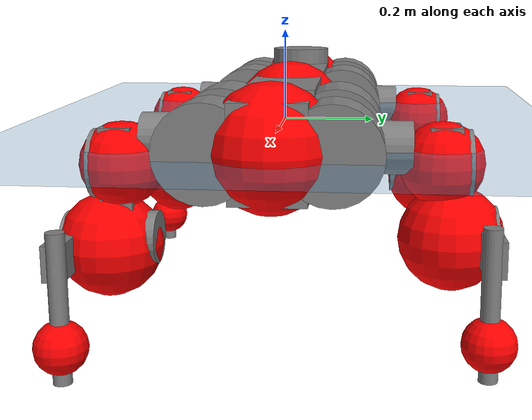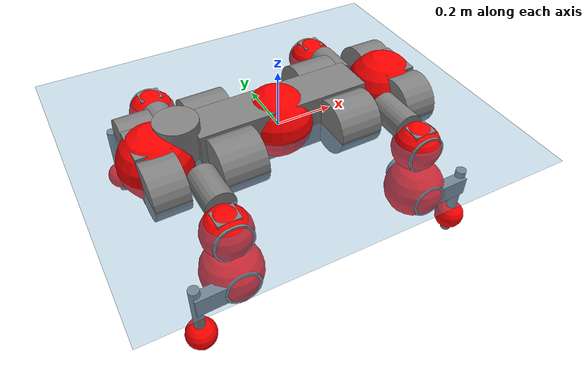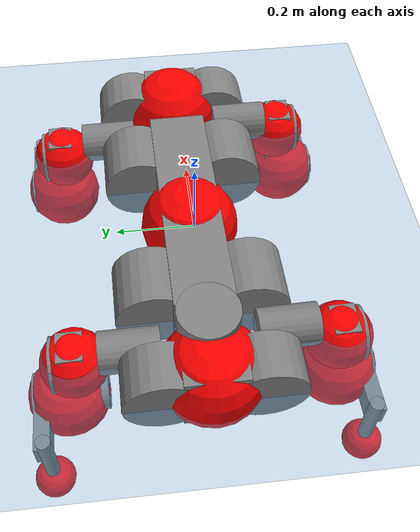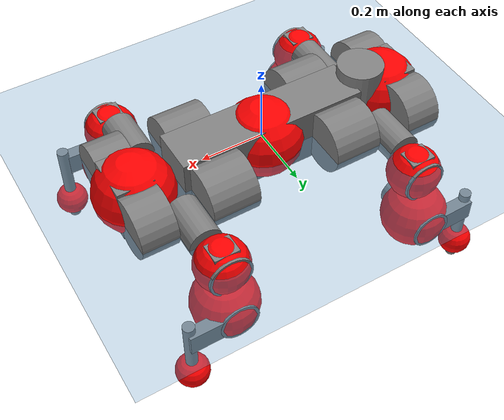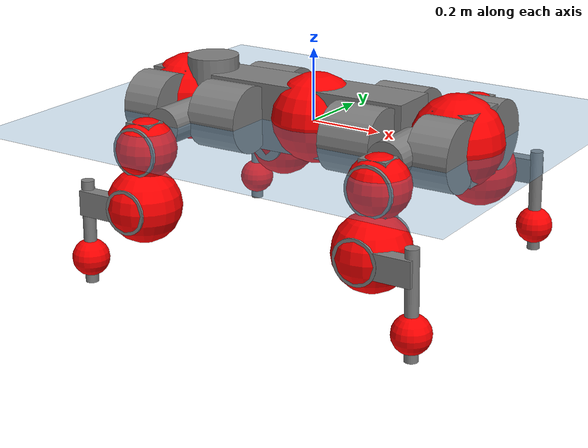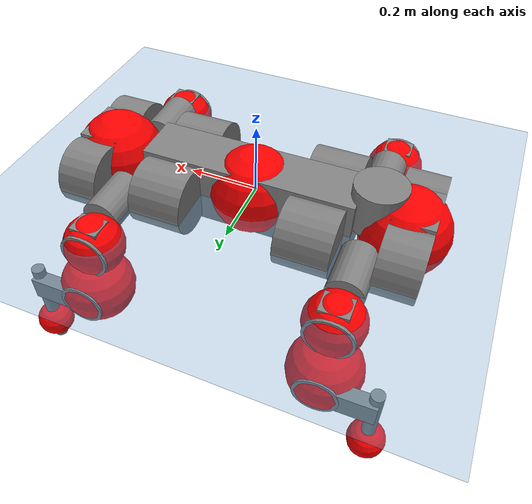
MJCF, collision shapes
<mujoco model="anymal_c">
  <compiler angle="radian" assetdir="assets" balanceinertia="true" inertiafromgeom="false"/>

  <option timestep="0.005" density="1.2" viscosity="2e-05"/>

  <size nkey="1"/>

  <visual>
    <quality shadowsize="8192"/>
    <map shadowclip="0.5"/>
  </visual>

  <default>
    <default class="/">
      <material specular="0" shininess="0.25"/>
      <geom contype="0" conaffinity="0" group="1" solref="-1000 -80"/>
      <site size="0.01 0.005 0.005" group="5"/>
      <general forcelimited="true" forcerange="-80 80" biastype="affine" gainprm="80" biasprm="0 -80 -2"/>
      <default class="anymal_c">
        <joint armature="0.01" damping="0.01" frictionloss="0.1"/>
        <default class="visual">
          <geom type="mesh" group="2"/>
          <default class="visual_zflip"/>
        </default>
        <default class="collision">
          <geom type="cylinder" group="3"/>
          <default class="foot">
            <geom size="0.03 0 0" type="sphere" condim="6" priority="1" friction="0.8 0.02 0.01" solimp="0.015 1 0.03"/>
          </default>
        </default>
      </default>
      <default class="reward_collision_sphere">
        <geom group="5" rgba="1 0 0 1"/>
      </default>
    </default>
  </default>

  <asset>
    <texture type="skybox" colorspace="auto" name="//unnamed_texture_0" builtin="gradient" rgb1="0.95 0.95 0.95" rgb2="0.95 0.95 0.95" width="100" height="600"/>
    <texture type="2d" colorspace="auto" name="texplane" builtin="checker" rgb1="0.345 0.575 0.748" rgb2="0.345 0.575 0.748" markrgb="1 1 1" width="512" height="512"/>
    <texture type="2d" colorspace="linear" name="base" file="base.png"/>
    <texture type="2d" colorspace="linear" name="top_shell" file="top_shell.png"/>
    <texture type="2d" colorspace="linear" name="bottom_shell" file="bottom_shell.png"/>
    <texture type="2d" colorspace="linear" name="remote" file="remote.png"/>
    <texture type="2d" colorspace="linear" name="hatch" file="hatch.png"/>
    <texture type="2d" colorspace="linear" name="handle" file="handle.png"/>
    <texture type="2d" colorspace="linear" name="face" file="face.png"/>
    <texture type="2d" colorspace="linear" name="battery" file="battery.png"/>
    <texture type="2d" colorspace="linear" name="lidar_cage" file="lidar_cage.png"/>
    <texture type="2d" colorspace="linear" name="depth_camera" file="depth_camera.png"/>
    <texture type="2d" colorspace="linear" name="wide_angle_camera" file="wide_angle_camera.png"/>
    <texture type="2d" colorspace="linear" name="lidar" file="lidar.png"/>
    <texture type="2d" colorspace="linear" name="drive" file="drive.png"/>
    <texture type="2d" colorspace="linear" name="hip_l" file="hip_l.png"/>
    <texture type="2d" colorspace="linear" name="shank_l" file="shank_l.png"/>
    <texture type="2d" colorspace="linear" name="foot" file="foot.png"/>
    <texture type="2d" colorspace="linear" name="thigh" file="thigh.png"/>
    <texture type="2d" colorspace="linear" name="shank_r" file="shank_r.png"/>
    <texture type="2d" colorspace="linear" name="hip_r" file="hip_r.png"/>
    <material name="MatPlane" class="/" texture="texplane" texuniform="true" texrepeat="2 2" specular="0.9" shininess="0.5"/>
    <material name="black_plastic" class="/" rgba="0.007 0.007 0.007 1"/>
    <material name="green" class="/" rgba="0.052 0.178 0.033 1"/>
    <material name="red" class="/" rgba="0.178 0.006 0.005 1"/>
    <material name="yellow" class="/" rgba="0.178 0.119 0.006 1"/>
    <material name="lwl" class="/" rgba="0.8 0.8 0.8 1"/>
    <material name="base" class="/" texture="base"/>
    <material name="top_shell" class="/" texture="top_shell"/>
    <material name="bottom_shell" class="/" texture="bottom_shell"/>
    <material name="hip_l" class="/" texture="hip_l"/>
    <material name="thigh" class="/" texture="thigh"/>
    <material name="shank_l" class="/" texture="shank_l"/>
    <material name="foot" class="/" texture="foot"/>
    <material name="hip_r" class="/" texture="hip_r"/>
    <material name="shank" class="/" texture="shank_r"/>
    <material name="hatch" class="/" texture="hatch"/>
    <material name="remote" class="/" texture="remote"/>
    <material name="handle" class="/" texture="handle"/>
    <material name="face" class="/" texture="face"/>
    <material name="depth_camera" class="/" texture="depth_camera"/>
    <material name="wide_angle_camera" class="/" texture="wide_angle_camera"/>
    <material name="battery" class="/" texture="battery"/>
    <material name="lidar_cage" class="/" texture="lidar_cage"/>
    <material name="lidar" class="/" texture="lidar"/>
    <material name="drive" class="/" texture="drive"/>
    <mesh name="base_0" class="/" file="base_0.obj"/>
    <mesh name="base_1" class="/" file="base_1.obj"/>
    <mesh name="base_2" class="/" file="base_2.obj"/>
    <mesh name="base_3" class="/" file="base_3.obj"/>
    <mesh name="base_4" class="/" file="base_4.obj"/>
    <mesh name="base_5" class="/" file="base_5.obj"/>
    <mesh name="top_shell" class="/" file="top_shell.obj"/>
    <mesh name="bottom_shell" class="/" file="bottom_shell.obj"/>
    <mesh name="remote" class="/" file="remote.obj"/>
    <mesh name="handle" class="/" file="handle.obj"/>
    <mesh name="face" class="/" file="face.obj"/>
    <mesh name="wide_angle_camera" class="/" file="wide_angle_camera.obj"/>
    <mesh name="depth_camera" class="/" file="depth_camera.obj"/>
    <mesh name="battery" class="/" file="battery.obj"/>
    <mesh name="lidar_cage" class="/" file="lidar_cage.obj"/>
    <mesh name="lidar" class="/" file="lidar.obj"/>
    <mesh name="drive" class="/" file="drive.obj"/>
    <mesh name="hip_l" class="/" file="hip_l.obj"/>
    <mesh name="thigh" class="/" file="thigh.obj"/>
    <mesh name="shank_l" class="/" file="shank_l.obj"/>
    <mesh name="foot" class="/" file="foot.obj"/>
    <mesh name="hip_r" class="/" file="hip_r.obj"/>
    <mesh name="hatch" class="/" file="hatch.obj"/>
    <mesh name="shank_r" class="/" file="shank_r.obj"/>
  </asset>

  <worldbody>
    <geom name="floor" class="/" size="100 100 0.125" type="plane" group="0" material="MatPlane"/>
    <light name="toplight_shadow" class="/" pos="0 0 5" dir="0.0990148 0.0990148 -0.990148" type="directional" ambient="0.04 0.04 0.04" diffuse="0.55 0.55 0.55" specular="0.12 0.12 0.12"/>
    <light name="toplight_fill" class="/" pos="0 0 5" dir="0.0990148 0.0990148 -0.990148" type="directional" castshadow="false" ambient="0.04 0.04 0.04" diffuse="0.3 0.3 0.3" specular="0.08 0.08 0.08"/>
    <body name="trunk" childclass="anymal_c" pos="0.0014834 0.0115901 0.0070637" quat="0.999983 -0.000294024 -0.00364819 0.00453269">
      <inertial pos="0.0125631 0.0165485 0.0134878" quat="0.469248 0.539565 0.494709 0.493902" mass="21.2808" diaginertia="0.693356 8.75465 0.00750377"/>
      <joint name="//unnamed_joint_0" type="free" armature="0" damping="0" frictionloss="0"/>
      <geom name="//unnamed_geom_1" class="visual" material="green" mesh="base_0"/>
      <geom name="//unnamed_geom_2" class="visual" material="yellow" mesh="base_1"/>
      <geom name="//unnamed_geom_3" class="visual" material="red" mesh="base_2"/>
      <geom name="//unnamed_geom_4" class="visual" material="black_plastic" mesh="base_3"/>
      <geom name="//unnamed_geom_5" class="visual" material="lwl" mesh="base_4"/>
      <geom name="//unnamed_geom_6" class="visual" material="base" mesh="base_5"/>
      <geom name="trunk_1" class="collision" size="0.299121 0.0722017 0.0928308" type="box"/>
      <geom name="trunk_2" class="collision" size="0.0928308 0.0747804" pos="0.205176 0.11486 0" quat="0.707107 0 0.707107 0"/>
      <geom name="trunk_3" class="collision" size="0.0928308 0.0747804" pos="-0.205176 0.11486 0" quat="0.707107 0 0.707107 0"/>
      <geom name="trunk_4" class="collision" size="0.0928308 0.0747804" pos="0.205176 -0.11486 0" quat="0.707107 0 0.707107 0"/>
      <geom name="trunk_5" class="collision" size="0.0928308 0.0747804" pos="-0.205176 -0.11486 0" quat="0.707107 0 0.707107 0"/>
      <geom name="//unnamed_geom_12" class="visual" material="top_shell" mesh="top_shell"/>
      <geom name="//unnamed_geom_13" class="visual" material="bottom_shell" mesh="bottom_shell"/>
      <geom name="//unnamed_geom_14" class="visual" material="remote" mesh="remote"/>
      <geom name="//unnamed_geom_15" class="visual" material="handle" mesh="handle"/>
      <geom name="//unnamed_geom_16" class="visual" pos="0.391014 0 0" quat="1 0 0 0" material="face" mesh="face"/>
      <geom name="trunk_6" class="collision" size="0.0567299 0.0722017 0.0928308" pos="0.442898 0 0" type="box"/>
      <geom name="//unnamed_geom_18" class="collision" size="0.0928308 0.0567299" pos="0.442898 0.11486 0" quat="0.707107 0 0.707107 0"/>
      <geom name="//unnamed_geom_19" class="collision" size="0.0928308 0.0567299" pos="0.442898 -0.11486 0" quat="0.707107 0 0.707107 0"/>
      <geom name="//unnamed_geom_20" class="visual" pos="0.435475 0 -0.0116044" quat="0.965926 0 0.258819 0" material="depth_camera" mesh="depth_camera"/>
      <geom name="//unnamed_geom_21" class="visual" pos="0.483933 0 0.00763707" material="wide_angle_camera" mesh="wide_angle_camera"/>
      <geom name="//unnamed_geom_22" class="visual_zflip" pos="-0.391014 0 0" quat="0 0 0 1" material="face" mesh="face"/>
      <geom name="trunk_7" class="collision" size="0.0567299 0.0722017 0.0928308" pos="-0.442898 0 0" quat="0 0 0 1" type="box"/>
      <geom name="//unnamed_geom_24" class="collision" size="0.0928308 0.0567299" pos="-0.442898 -0.11486 0" quat="0 -0.707107 0 0.707107"/>
      <geom name="//unnamed_geom_25" class="collision" size="0.0928308 0.0567299" pos="-0.442898 0.11486 0" quat="0 -0.707107 0 0.707107"/>
      <geom name="//unnamed_geom_26" class="visual" pos="-0.435475 0 -0.0116044" quat="0 -0.258819 0 0.965926" material="depth_camera" mesh="depth_camera"/>
      <geom name="//unnamed_geom_27" class="visual_zflip" pos="-0.483933 0 0.00763707" quat="0 0 0 1" material="wide_angle_camera" mesh="wide_angle_camera"/>
      <geom name="//unnamed_geom_28" class="visual" material="battery" mesh="battery"/>
      <geom name="//unnamed_geom_29" class="visual" pos="0 0.134595 0.0181123" quat="0.683013 -0.183013 0.183013 0.683013" material="depth_camera" mesh="depth_camera"/>
      <geom name="//unnamed_geom_30" class="visual" pos="0 -0.134595 0.0181123" quat="0.683013 0.183013 0.183013 -0.683013" material="depth_camera" mesh="depth_camera"/>
      <geom name="//unnamed_geom_31" class="visual" pos="-0.343376 0 0.0374966" quat="1 0 0 0" material="lidar_cage" mesh="lidar_cage"/>
      <geom name="trunk_8" class="collision" size="0.0722017 0.0618872" pos="-0.343376 0 0.0681061"/>
      <geom name="//unnamed_geom_33" class="visual" pos="-0.343376 0.000274037 0.0725445" quat="0.707107 0 0 -0.707107" material="lidar" mesh="lidar"/>
      <geom name="//unnamed_geom_34" class="visual" pos="0.282908 0.170248 1.95048e-08" quat="0.258819 0.965926 0 0" material="drive" mesh="drive"/>
      <geom name="//unnamed_geom_35" class="visual" pos="0.282908 -0.170248 -1.95048e-08" quat="0.258819 -0.965926 0 0" material="drive" mesh="drive"/>
      <geom name="//unnamed_geom_36" class="visual" pos="-0.282908 0.170248 -1.95048e-08" quat="0 0 0.965926 -0.258819" material="drive" mesh="drive"/>
      <geom name="//unnamed_geom_37" class="visual" pos="-0.282908 -0.170248 1.95048e-08" quat="0 0 -0.965926 -0.258819" material="drive" mesh="drive"/>
      <geom name="//unnamed_geom_38" class="visual" pos="0.109427 0 0.0372415" quat="1 0 0 0" material="hatch" mesh="hatch"/>
      <geom name="//unnamed_geom_39" class="reward_collision_sphere" size="0.123774"/>
      <geom name="//unnamed_geom_40" class="reward_collision_sphere" size="0.123774" pos="0.424503 0 0"/>
      <geom name="//unnamed_geom_41" class="reward_collision_sphere" size="0.123774" pos="-0.424503 0 0"/>
      <site name="imu" pos="0.253054 -0.000167043 0.00984369" size="0.0103145"/>
      <camera name="track" pos="0 -3.28172 0" quat="0.707107 0.707107 0 0" mode="trackcom"/>
      <camera name="ego_camera" pos="0.424503 0 -0.0204063" quat="-0.5 -0.5 0.5 0.5"/>
      <body name="LF_HIP" pos="0.279499 0.170518 -0.00332535" quat="0.259433 0.965761 -0.000639511 -0.000797342">
        <inertial pos="0.0541853 -0.0113042 -0.00535688" quat="-0.187102 0.729204 -0.179548 0.633259" mass="2.77343" diaginertia="0.00422325 0.0606356 0.000109205"/>
        <joint name="LF_HAA" pos="0 0 0" axis="0.999294 -0.0127593 0.0353453" range="-0.522693 0.587396" armature="0.012485" damping="0" frictionloss="0.108723"/>
        <geom name="//unnamed_geom_42" class="visual" pos="0 0.00114738 -0.000188456" quat="0.258819 -0.965926 0 0" material="hip_l" mesh="hip_l"/>
        <geom name="//unnamed_geom_43" class="visual" pos="0.056506 -0.0772514 -0.0362378" quat="0.183013 -0.683013 0.683013 0.183013" material="drive" mesh="drive"/>
        <geom name="//unnamed_geom_44" class="collision" size="0.0515727 0.0722017" pos="0.0565061 -0.0196244 -0.00352264" quat="-0.353553 -0.612372 0.612372 -0.353553"/>
        <body name="LF_THIGH" pos="0.0428932 -0.128971 -0.0280272" quat="0.187107 -0.681531 0.681436 0.190134">
          <inertial pos="0.0306728 -0.0169455 -0.120397" quat="0.994169 0.0281409 -0.0563452 0.087533" mass="2.91395" diaginertia="0.0263821 0.278741 0.000141529"/>
          <joint name="LF_HFE" pos="0 0 0" axis="0.998212 -0.00770721 -0.0592818" range="-2.90393 3.45104" armature="0.00149066" damping="0" frictionloss="0.155859"/>
          <geom name="//unnamed_geom_45" class="visual" pos="-0.0138779 -2.18684e-05 0" quat="0.707107 0 0 -0.707107" material="thigh" mesh="thigh"/>
          <geom name="//unnamed_geom_46" class="collision" size="0.0670445 0.0412581" pos="0.0377336 0 0" quat="0.5 0.5 -0.5 -0.5"/>
          <geom name="//unnamed_geom_47" class="collision" size="0.0386795 0.0309436 0.145759" pos="0.0283002 0 -0.0720925" quat="0.707107 0 0 -0.707107" type="box"/>
          <geom name="//unnamed_geom_48" class="visual" pos="0.094617 0 -0.145395" quat="1 0 0 0" material="drive" mesh="drive"/>
          <geom name="//unnamed_geom_49" class="collision" size="0.0515727 0.0722017" pos="0.0285832 0 -0.145395" quat="0.707107 0 0.707107 0"/>
          <geom name="//unnamed_geom_50" class="reward_collision_sphere" size="0.0825163" pos="0.0235835 0 0"/>
          <body name="LF_SHANK" pos="0.0891717 -0.00548972 -0.144325" quat="0.999999 -0.000318396 0.00108238 0.0010033">
            <inertial pos="0.019918 -0.0894312 -0.0277262" quat="0.995062 -0.0981548 -0.0131364 0.00661967" mass="0.666336" diaginertia="0.00867591 0.100891 4.60662e-05"/>
            <joint name="LF_KFE" pos="0 0 0" axis="0.999937 -0.00983407 -0.005359" range="-3.48194 2.87444" armature="0.0160372" damping="0.0821023" frictionloss="0.0654096"/>
            <geom name="//unnamed_geom_51" class="visual" pos="-0.00452529 -0.0241291 0" quat="0.707107 0 0 -0.707107" material="shank_l" mesh="shank_l"/>
            <geom name="LF_kfe_act" class="collision" size="0.0618872 0.0206291" pos="0.0188668 0 0" quat="0.5 0.5 -0.5 -0.5"/>
            <geom name="//unnamed_geom_53" class="collision" size="0.0593075 0.0348115 0.0195976" pos="0.0188668 -0.0943479 0" quat="0.5 0.5 -0.5 -0.5" type="box"/>
            <geom name="//unnamed_geom_54" class="visual" pos="0.0123117 -0.15209 -0.172418" quat="0.382683 0 0 -0.92388" material="foot" mesh="foot"/>
            <geom name="LF_calf" class="collision" size="0.0180504 0.145695" pos="0.0123106 -0.144314 -0.0862091" quat="0.707107 0 0 -0.707107"/>
            <geom name="LF_foot" class="foot" size="0.0334083" pos="0.0123106 -0.144314 -0.16094" quat="0.707107 0 0 -0.707107"/>
            <geom name="//unnamed_geom_57" class="reward_collision_sphere" size="0.103145" pos="-0.047167 0 0"/>
            <geom name="//unnamed_geom_58" class="reward_collision_sphere" size="0.0515727" pos="0.0123106 -0.144314 -0.16094"/>
            <site name="LF_foot" class="foot" pos="0.0123106 -0.144314 -0.16094" quat="0.707107 0 0 -0.707107" size="0.0103145"/>
          </body>
        </body>
      </body>
      <body name="RF_HIP" pos="0.299777 -0.161658 0.0103206" quat="0.259195 -0.965821 0.000705569 -0.00275871">
        <inertial pos="0.0579701 0.0169144 0.00451125" quat="0.193996 0.667564 0.172102 0.697929" mass="3.28825" diaginertia="0.00493541 0.058564 0.000100781"/>
        <joint name="RF_HAA" pos="0 0 0" axis="0.998689 0.00321022 -0.0510964" stiffness="0.0867434" range="-0.562023 0.434839" armature="0.0144319" damping="0.00118369" frictionloss="0.0687046"/>
        <geom name="//unnamed_geom_59" class="visual" pos="0 -0.00114737 -0.000188455" quat="0.258819 0.965926 0 0" material="hip_r" mesh="hip_r"/>
        <geom name="//unnamed_geom_60" class="visual" pos="0.0565061 0.0772514 -0.0362378" quat="0.183013 0.683013 0.683013 -0.183013" material="drive" mesh="drive"/>
        <geom name="//unnamed_geom_61" class="collision" size="0.0515727 0.0722017" pos="0.0565061 0.0196244 -0.00352264" quat="-0.353553 0.612372 0.612372 0.353553"/>
        <body name="RF_THIGH" pos="0.0648808 0.120976 -0.00667092" quat="0.182677 0.682807 0.683296 -0.183059">
          <inertial pos="0.0195324 0.0113297 -0.140836" quat="0.990407 0.00133587 -0.0638154 0.122558" mass="3.08607" diaginertia="0.0258921 0.354405 0.000144001"/>
          <joint name="RF_HFE" pos="0 0 0" axis="0.99987 -0.00452537 0.0154979" range="-3.10001 2.9882" armature="0.0172839" damping="0" frictionloss="0.159783"/>
          <geom name="//unnamed_geom_62" class="visual" pos="-0.0138779 -2.18684e-05 0" quat="0.707107 0 0 -0.707107" material="thigh" mesh="thigh"/>
          <geom name="//unnamed_geom_63" class="collision" size="0.0670445 0.0412581" pos="0.0377336 0 0" quat="0.5 0.5 0.5 0.5"/>
          <geom name="//unnamed_geom_64" class="collision" size="0.0386795 0.0309436 0.145759" pos="0.0283002 0 -0.0720925" quat="0.707107 0 0 0.707107" type="box"/>
          <geom name="//unnamed_geom_65" class="visual" pos="0.094617 0 -0.145395" quat="1 0 0 0" material="drive" mesh="drive"/>
          <geom name="//unnamed_geom_66" class="collision" size="0.0515727 0.0722017" pos="0.0285832 0 -0.145395" quat="0.707107 0 0.707107 0"/>
          <geom name="//unnamed_geom_67" class="reward_collision_sphere" size="0.0825163" pos="0.0235835 0 0"/>
          <body name="RF_SHANK" pos="0.100205 -0.00197854 -0.160311" quat="0.999996 0.00131339 -0.000599137 -0.00242723">
            <inertial pos="0.016175 0.089085 -0.0441596" quat="0.996705 0.0810759 0.00202927 0.00132601" mass="0.512711" diaginertia="0.006597 0.0735817 3.46211e-05"/>
            <joint name="RF_KFE" pos="0 0 0" axis="0.999847 0.0155991 -0.00793746" range="-3.28859 3.01055" armature="0.0124541" damping="0.0913686" frictionloss="0.143585"/>
            <geom name="//unnamed_geom_68" class="visual" pos="-0.00452527 0.024129 0" quat="0.707107 0 0 0.707107" material="shank" mesh="shank_r"/>
            <geom name="RF_kfe_act" class="collision" size="0.0618872 0.0206291" pos="0.0188668 0 0" quat="0.5 0.5 0.5 0.5"/>
            <geom name="//unnamed_geom_70" class="collision" size="0.0593075 0.0348115 0.0195976" pos="0.0188668 0.0943479 0" quat="0.5 0.5 0.5 0.5" type="box"/>
            <geom name="//unnamed_geom_71" class="visual" pos="0.0123095 0.15209 -0.172418" quat="0.382683 0 0 0.92388" material="foot" mesh="foot"/>
            <geom name="RF_calf" class="collision" size="0.0180504 0.145695" pos="0.0123106 0.144314 -0.0862091" quat="0.707107 0 0 0.707107"/>
            <geom name="RF_foot" class="foot" size="0.0505107" pos="0.0123106 0.144314 -0.16094" quat="0.707107 0 0 0.707107"/>
            <geom name="//unnamed_geom_74" class="reward_collision_sphere" size="0.103145" pos="-0.047167 0 0"/>
            <geom name="//unnamed_geom_75" class="reward_collision_sphere" size="0.0515727" pos="0.0123106 0.144314 -0.16094"/>
            <site name="RF_foot" class="foot" pos="0.0123106 0.144314 -0.16094" quat="0.707107 0 0 0.707107" size="0.0103145"/>
          </body>
        </body>
      </body>
      <body name="LH_HIP" pos="-0.281443 0.161161 -0.0126956" quat="0.00070159 0.000617653 0.965777 -0.259372">
        <inertial pos="0.0482102 0.0307539 -0.0150936" quat="0.13352 0.684807 0.154958 0.699428" mass="4.08668" diaginertia="0.0051445 0.072135 0.000109097"/>
        <joint name="LH_HAA" pos="0 0 0" axis="0.999111 -0.0406083 -0.0113623" range="-0.771877 0.872848" armature="0.0132686" damping="0.0168292" frictionloss="0.0364673"/>
        <geom name="//unnamed_geom_76" class="visual" pos="0 -0.00114737 -0.000188455" quat="-0.258819 -0.965926 0 0" material="hip_r" mesh="hip_r"/>
        <geom name="//unnamed_geom_77" class="visual" pos="0.0565061 0.0772514 -0.0362378" quat="0.183013 0.683013 0.683013 -0.183013" material="drive" mesh="drive"/>
        <geom name="//unnamed_geom_78" class="collision" size="0.0515727 0.0722017" pos="0.0565061 0.0196244 -0.00352264" quat="-0.353553 0.612372 0.612372 0.353553"/>
        <body name="LH_THIGH" pos="0.05484 0.128506 -0.0275827" quat="0.17766 0.686054 0.680294 -0.186994">
          <inertial pos="0.0269033 -0.0176925 -0.132848" quat="0.984448 -0.00658869 -0.143005 0.101827" mass="4.04549" diaginertia="0.025337 0.308186 0.000117429"/>
          <joint name="LH_HFE" pos="0 0 0" axis="0.996414 -0.0754108 0.0383724" stiffness="0.0180044" range="-3.05931 3.18551" armature="0.0044252" damping="0" frictionloss="0.15604"/>
          <geom name="//unnamed_geom_79" class="visual" pos="-0.0138779 -2.18684e-05 0" quat="0.707107 0 0 -0.707107" material="thigh" mesh="thigh"/>
          <geom name="//unnamed_geom_80" class="collision" size="0.0670445 0.0412581" pos="0.0377336 0 0" quat="0.5 0.5 -0.5 -0.5"/>
          <geom name="//unnamed_geom_81" class="collision" size="0.0386795 0.0309436 0.145759" pos="0.0283002 0 -0.0720925" quat="0.707107 0 0 -0.707107" type="box"/>
          <geom name="//unnamed_geom_82" class="visual" pos="0.094617 0 -0.145395" quat="1 0 0 0" material="drive" mesh="drive"/>
          <geom name="//unnamed_geom_83" class="collision" size="0.0515727 0.0722017" pos="0.0285832 0 -0.145395" quat="0.707107 0 0.707107 0"/>
          <geom name="//unnamed_geom_84" class="reward_collision_sphere" size="0.0825163" pos="0.0235835 0 0"/>
          <body name="LH_SHANK" pos="0.103373 -0.000180481 -0.15744" quat="0.999988 0.00208698 -0.00443967 -0.000845181">
            <inertial pos="0.00396812 0.0867417 -0.0378134" quat="0.992731 0.116097 0.0133781 0.0287625" mass="0.659889" diaginertia="0.00822455 0.119348 4.22837e-05"/>
            <joint name="LH_KFE" pos="0 0 0" axis="1 -0.000367637 -0.000659235" range="-3.47281 3.12283" armature="0.0015354" damping="0" frictionloss="0.161187"/>
            <geom name="//unnamed_geom_85" class="visual" pos="-0.00452527 0.024129 0" quat="-0.707107 0 0 -0.707107" material="shank" mesh="shank_r"/>
            <geom name="LH_kfe_act" class="collision" size="0.0618872 0.0206291" pos="0.0188668 0 0" quat="0.5 0.5 -0.5 -0.5"/>
            <geom name="//unnamed_geom_87" class="collision" size="0.0593075 0.0348115 0.0195976" pos="0.0188668 0.0943479 0" quat="0.5 0.5 -0.5 -0.5" type="box"/>
            <geom name="//unnamed_geom_88" class="visual" pos="0.0123095 0.15209 -0.172418" quat="-0.382683 0 0 -0.92388" material="foot" mesh="foot"/>
            <geom name="LH_calf" class="collision" size="0.0180504 0.145695" pos="0.0123106 0.144314 -0.0862091" quat="0.707107 0 0 -0.707107"/>
            <geom name="LH_foot" class="foot" size="0.0306053" pos="0.0123106 0.144314 -0.16094" quat="0.707107 0 0 -0.707107"/>
            <geom name="//unnamed_geom_91" class="reward_collision_sphere" size="0.103145" pos="-0.047167 0 0"/>
            <geom name="//unnamed_geom_92" class="reward_collision_sphere" size="0.0515727" pos="0.0123106 0.144314 -0.16094"/>
            <site name="LH_foot" class="foot" pos="0.0123106 0.144314 -0.16094" quat="0.707107 0 0 -0.707107" size="0.0103145"/>
          </body>
        </body>
      </body>
      <body name="RH_HIP" pos="-0.266307 -0.172643 -0.00620731" quat="0.00388522 0.00300937 -0.967767 -0.251798">
        <inertial pos="0.0506538 -0.0180788 -7.2112e-05" quat="-0.122494 0.711789 -0.135462 0.678235" mass="3.4051" diaginertia="0.00493561 0.0597195 9.90897e-05"/>
        <joint name="RH_HAA" pos="0 0 0" axis="0.999877 -0.0134554 0.00804171" range="-0.611731 0.255026" armature="0.00233036" damping="0.0175292" frictionloss="0.0469829"/>
        <geom name="//unnamed_geom_93" class="visual" pos="0 0.00114738 -0.000188456" quat="-0.258819 0.965926 0 0" material="hip_l" mesh="hip_l"/>
        <geom name="//unnamed_geom_94" class="visual" pos="0.056506 -0.0772514 -0.0362378" quat="-0.183013 0.683013 -0.683013 -0.183013" material="drive" mesh="drive"/>
        <geom name="//unnamed_geom_95" class="collision" size="0.0515727 0.0722017" pos="0.0565061 -0.0196244 -0.00352264" quat="0.353553 0.612372 -0.612372 0.353553"/>
        <body name="RH_THIGH" pos="0.0683887 -0.132123 -0.0140279" quat="-0.186723 0.681396 -0.68379 -0.182389">
          <inertial pos="0.0282865 0.0127714 -0.122046" quat="0.994406 -0.0222238 -0.0765126 0.0693501" mass="2.85193" diaginertia="0.021942 0.357472 0.000153115"/>
          <joint name="RH_HFE" pos="0 0 0" axis="0.999989 -0.00201851 0.00429635" range="-3.19173 2.79583" armature="0.0189183" damping="0" frictionloss="0.119076"/>
          <geom name="//unnamed_geom_96" class="visual" pos="-0.0138779 -2.18684e-05 0" quat="0.707107 0 0 -0.707107" material="thigh" mesh="thigh"/>
          <geom name="//unnamed_geom_97" class="collision" size="0.0670445 0.0412581" pos="0.0377336 0 0" quat="0.5 0.5 0.5 0.5"/>
          <geom name="//unnamed_geom_98" class="collision" size="0.0386795 0.0309436 0.145759" pos="0.0283002 0 -0.0720925" quat="0.707107 0 0 0.707107" type="box"/>
          <geom name="//unnamed_geom_99" class="visual" pos="0.094617 0 -0.145395" quat="1 0 0 0" material="drive" mesh="drive"/>
          <geom name="//unnamed_geom_100" class="collision" size="0.0515727 0.0722017" pos="0.0285832 0 -0.145395" quat="0.707107 0 0.707107 0"/>
          <geom name="//unnamed_geom_101" class="reward_collision_sphere" size="0.0825163" pos="0.0235835 0 0"/>
          <body name="RH_SHANK" pos="0.0841281 -0.00233457 -0.154126" quat="0.999998 -0.00111118 -0.000572492 0.00130951">
            <inertial pos="0.0155667 -0.10484 -0.0413752" quat="0.992863 -0.116522 -0.000655514 -0.0253888" mass="0.55269" diaginertia="0.00695923 0.0970585 4.04407e-05"/>
            <joint name="RH_KFE" pos="0 0 0" axis="0.997921 0.0590561 -0.0257945" range="-3.43454 2.95308" armature="0.0131272" damping="0.0201278" frictionloss="0.050879"/>
            <geom name="//unnamed_geom_102" class="visual" pos="-0.00452529 -0.0241291 0" quat="0.707107 0 0 -0.707107" material="shank_l" mesh="shank_l"/>
            <geom name="RH_kfe_act" class="collision" size="0.0618872 0.0206291" pos="0.0188668 0 0" quat="0.5 0.5 0.5 0.5"/>
            <geom name="//unnamed_geom_104" class="collision" size="0.0593075 0.0348115 0.0195976" pos="0.0188668 -0.0943479 0" quat="0.5 0.5 0.5 0.5" type="box"/>
            <geom name="//unnamed_geom_105" class="visual" pos="0.0123117 -0.15209 -0.172418" quat="0.382683 0 0 -0.92388" material="foot" mesh="foot"/>
            <geom name="RH_calf" class="collision" size="0.0180504 0.145695" pos="0.0123106 -0.144314 -0.0862091" quat="0.707107 0 0 0.707107"/>
            <geom name="RH_foot" class="foot" size="0.0108366" pos="0.0123106 -0.144314 -0.16094" quat="0.707107 0 0 0.707107"/>
            <geom name="//unnamed_geom_108" class="reward_collision_sphere" size="0.103145" pos="-0.047167 0 0"/>
            <geom name="//unnamed_geom_109" class="reward_collision_sphere" size="0.0515727" pos="0.0123106 -0.144314 -0.16094"/>
            <site name="RH_foot" class="foot" pos="0.0123106 -0.144314 -0.16094" quat="0.707107 0 0 0.707107" size="0.0103145"/>
          </body>
        </body>
      </body>
    </body>
  </worldbody>

  <contact>
    <pair class="/" geom1="floor" geom2="LF_foot" name="//unnamed_contact_0"/>
    <pair class="/" geom1="floor" geom2="RF_foot" name="//unnamed_contact_1"/>
    <pair class="/" geom1="floor" geom2="LH_foot" name="//unnamed_contact_2"/>
    <pair class="/" geom1="floor" geom2="RH_foot" name="//unnamed_contact_3"/>
  </contact>

  <actuator>
    <general name="LF_HAA" class="/" joint="LF_HAA" forcerange="-54.3516 54.3516" gainprm="77.4704" biasprm="0 -77.4704 -1.91083"/>
    <general name="LF_HFE" class="/" joint="LF_HFE" forcerange="-84.9814 84.9814" gainprm="77.4704" biasprm="0 -77.4704 -1.91083"/>
    <general name="LF_KFE" class="/" joint="LF_KFE" forcerange="-74.7835 74.7835" gainprm="77.4704" biasprm="0 -77.4704 -1.91083"/>
    <general name="RF_HAA" class="/" joint="RF_HAA" forcerange="-112.438 112.438" gainprm="77.4704" biasprm="0 -77.4704 -1.91083"/>
    <general name="RF_HFE" class="/" joint="RF_HFE" forcerange="-89.4458 89.4458" gainprm="77.4704" biasprm="0 -77.4704 -1.91083"/>
    <general name="RF_KFE" class="/" joint="RF_KFE" forcerange="-121.05 121.05" gainprm="77.4704" biasprm="0 -77.4704 -1.91083"/>
    <general name="LH_HAA" class="/" joint="LH_HAA" forcerange="-105.107 105.107" gainprm="77.4704" biasprm="0 -77.4704 -1.91083"/>
    <general name="LH_HFE" class="/" joint="LH_HFE" forcerange="-89.0492 89.0492" gainprm="77.4704" biasprm="0 -77.4704 -1.91083"/>
    <general name="LH_KFE" class="/" joint="LH_KFE" forcerange="-62.4064 62.4064" gainprm="77.4704" biasprm="0 -77.4704 -1.91083"/>
    <general name="RH_HAA" class="/" joint="RH_HAA" forcerange="-111.338 111.338" gainprm="77.4704" biasprm="0 -77.4704 -1.91083"/>
    <general name="RH_HFE" class="/" joint="RH_HFE" forcerange="-57.9059 57.9059" gainprm="77.4704" biasprm="0 -77.4704 -1.91083"/>
    <general name="RH_KFE" class="/" joint="RH_KFE" forcerange="-36.1196 36.1196" gainprm="77.4704" biasprm="0 -77.4704 -1.91083"/>
  </actuator>

  <sensor>
    <gyro site="imu" name="imu_angular_velocity"/>
    <velocimeter site="imu" name="imu_linear_velocity"/>
    <framelinvel objtype="site" objname="LF_foot" name="LF_foot_global_linear_velocity"/>
    <framelinvel objtype="site" objname="RF_foot" name="RF_foot_global_linear_velocity"/>
    <framelinvel objtype="site" objname="LH_foot" name="LH_foot_global_linear_velocity"/>
    <framelinvel objtype="site" objname="RH_foot" name="RH_foot_global_linear_velocity"/>
  </sensor>

  <keyframe>
    <key name="home" qpos="0 0 0.55 1 0 0 0 0 0.4 -0.8 0 -0.4 0.8 0 -0.4 0.8 0 0.4 -0.8"/>
  </keyframe>
</mujoco>
